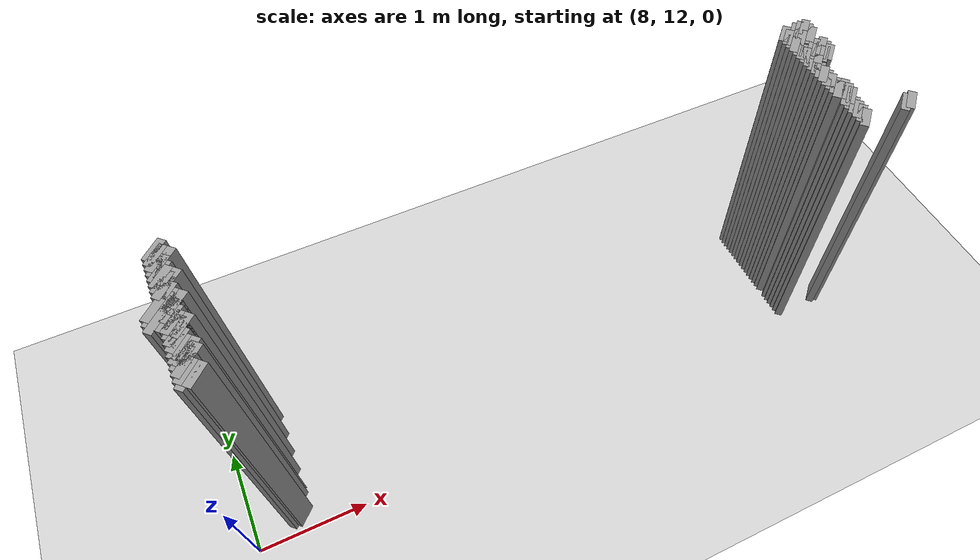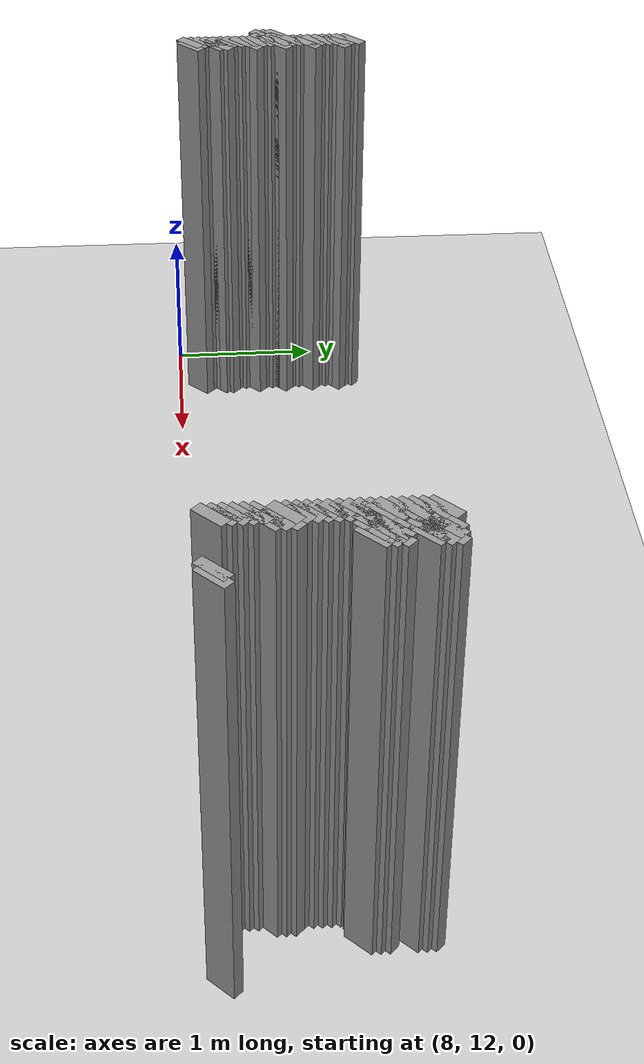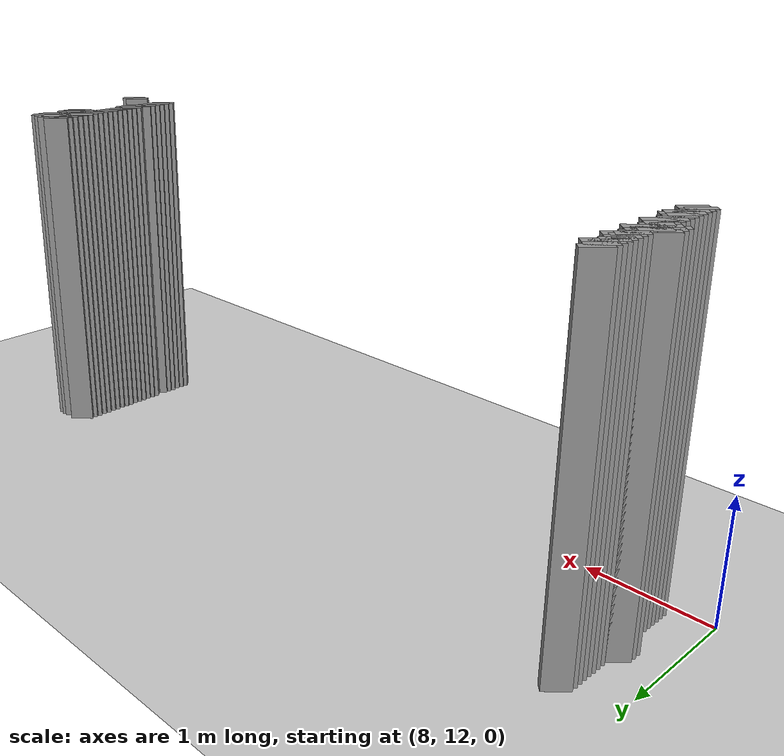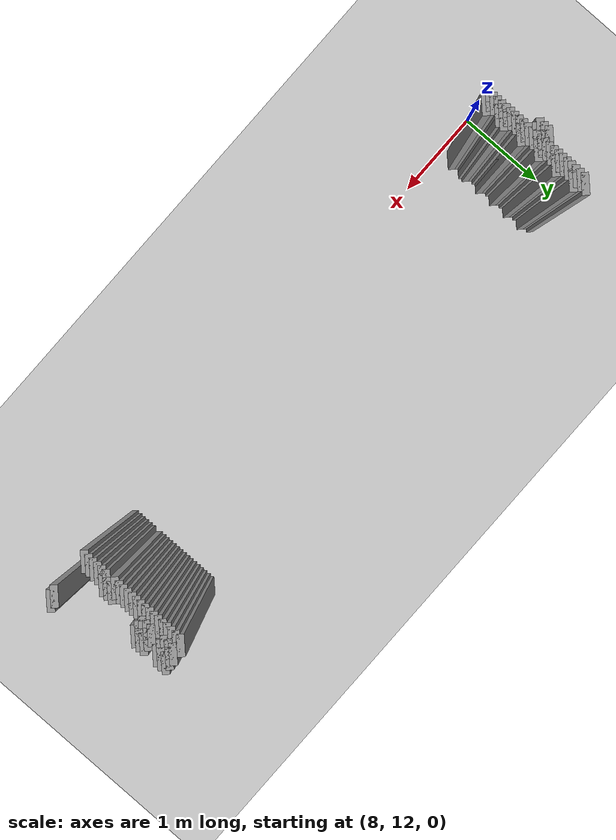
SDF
<sdf version="1.5">
 <world name="default">
  <include><uri>model://ground_plane</uri></include>
  <include><uri>model://sun</uri></include>
  <model name="grey_wall_779">
   <static>1</static>
   <link name="link">
    <pose>8.4 13.25  1.4 0 0 -0.785398163397</pose>
    <collision name="collision"><geometry><box><size>0.0707106781187 .2  2.8</size></box></geometry></collision>
    <visual name="visual">
     <cast_shadows>0</cast_shadows>
     <geometry><box><size>0.0707106781187 .2  2.8</size></box></geometry>
     <material>
      <script>
       <uri>model://grey_wall/materials/scripts</uri>
       <uri>model://grey_wall/materials/textures</uri>
       <name>vrc/grey_wall</name>
      </script>
     </material>
    </visual>
   </link>
  </model>
  <model name="grey_wall_780">
   <static>1</static>
   <link name="link">
    <pose>13.7 13.25  1.4 0 0 -0.785398163397</pose>
    <collision name="collision"><geometry><box><size>0.0707106781187 .2  2.8</size></box></geometry></collision>
    <visual name="visual">
     <cast_shadows>0</cast_shadows>
     <geometry><box><size>0.0707106781187 .2  2.8</size></box></geometry>
     <material>
      <script>
       <uri>model://grey_wall/materials/scripts</uri>
       <uri>model://grey_wall/materials/textures</uri>
       <name>vrc/grey_wall</name>
      </script>
     </material>
    </visual>
   </link>
  </model>
  <model name="grey_wall_781">
   <static>1</static>
   <link name="link">
    <pose>13.8 13.25  1.4 0 0 -0.785398163397</pose>
    <collision name="collision"><geometry><box><size>0.0707106781187 .2  2.8</size></box></geometry></collision>
    <visual name="visual">
     <cast_shadows>0</cast_shadows>
     <geometry><box><size>0.0707106781187 .2  2.8</size></box></geometry>
     <material>
      <script>
       <uri>model://grey_wall/materials/scripts</uri>
       <uri>model://grey_wall/materials/textures</uri>
       <name>vrc/grey_wall</name>
      </script>
     </material>
    </visual>
   </link>
  </model>
  <model name="grey_wall_782">
   <static>1</static>
   <link name="link">
    <pose>13.85 13.25  1.4 0 0 -0.785398163397</pose>
    <collision name="collision"><geometry><box><size>0.0707106781187 .2  2.8</size></box></geometry></collision>
    <visual name="visual">
     <cast_shadows>0</cast_shadows>
     <geometry><box><size>0.0707106781187 .2  2.8</size></box></geometry>
     <material>
      <script>
       <uri>model://grey_wall/materials/scripts</uri>
       <uri>model://grey_wall/materials/textures</uri>
       <name>vrc/grey_wall</name>
      </script>
     </material>
    </visual>
   </link>
  </model>
  <model name="grey_wall_783">
   <static>1</static>
   <link name="link">
    <pose>13.9 13.25  1.4 0 0 -0.785398163397</pose>
    <collision name="collision"><geometry><box><size>0.0707106781187 .2  2.8</size></box></geometry></collision>
    <visual name="visual">
     <cast_shadows>0</cast_shadows>
     <geometry><box><size>0.0707106781187 .2  2.8</size></box></geometry>
     <material>
      <script>
       <uri>model://grey_wall/materials/scripts</uri>
       <uri>model://grey_wall/materials/textures</uri>
       <name>vrc/grey_wall</name>
      </script>
     </material>
    </visual>
   </link>
  </model>
  <model name="grey_wall_784">
   <static>1</static>
   <link name="link">
    <pose>8.4 13.2  1.4 0 0 -0.785398163397</pose>
    <collision name="collision"><geometry><box><size>0.0707106781187 .2  2.8</size></box></geometry></collision>
    <visual name="visual">
     <cast_shadows>0</cast_shadows>
     <geometry><box><size>0.0707106781187 .2  2.8</size></box></geometry>
     <material>
      <script>
       <uri>model://grey_wall/materials/scripts</uri>
       <uri>model://grey_wall/materials/textures</uri>
       <name>vrc/grey_wall</name>
      </script>
     </material>
    </visual>
   </link>
  </model>
  <model name="grey_wall_785">
   <static>1</static>
   <link name="link">
    <pose>13.7 13.2  1.4 0 0 -0.785398163397</pose>
    <collision name="collision"><geometry><box><size>0.0707106781187 .2  2.8</size></box></geometry></collision>
    <visual name="visual">
     <cast_shadows>0</cast_shadows>
     <geometry><box><size>0.0707106781187 .2  2.8</size></box></geometry>
     <material>
      <script>
       <uri>model://grey_wall/materials/scripts</uri>
       <uri>model://grey_wall/materials/textures</uri>
       <name>vrc/grey_wall</name>
      </script>
     </material>
    </visual>
   </link>
  </model>
  <model name="grey_wall_786">
   <static>1</static>
   <link name="link">
    <pose>13.8 13.2  1.4 0 0 -0.785398163397</pose>
    <collision name="collision"><geometry><box><size>0.0707106781187 .2  2.8</size></box></geometry></collision>
    <visual name="visual">
     <cast_shadows>0</cast_shadows>
     <geometry><box><size>0.0707106781187 .2  2.8</size></box></geometry>
     <material>
      <script>
       <uri>model://grey_wall/materials/scripts</uri>
       <uri>model://grey_wall/materials/textures</uri>
       <name>vrc/grey_wall</name>
      </script>
     </material>
    </visual>
   </link>
  </model>
  <model name="grey_wall_787">
   <static>1</static>
   <link name="link">
    <pose>13.9 13.2  1.4 0 0 -0.785398163397</pose>
    <collision name="collision"><geometry><box><size>0.0707106781187 .2  2.8</size></box></geometry></collision>
    <visual name="visual">
     <cast_shadows>0</cast_shadows>
     <geometry><box><size>0.0707106781187 .2  2.8</size></box></geometry>
     <material>
      <script>
       <uri>model://grey_wall/materials/scripts</uri>
       <uri>model://grey_wall/materials/textures</uri>
       <name>vrc/grey_wall</name>
      </script>
     </material>
    </visual>
   </link>
  </model>
  <model name="grey_wall_788">
   <static>1</static>
   <link name="link">
    <pose>8.4 13.15  1.4 0 0 -0.785398163397</pose>
    <collision name="collision"><geometry><box><size>0.0707106781187 .2  2.8</size></box></geometry></collision>
    <visual name="visual">
     <cast_shadows>0</cast_shadows>
     <geometry><box><size>0.0707106781187 .2  2.8</size></box></geometry>
     <material>
      <script>
       <uri>model://grey_wall/materials/scripts</uri>
       <uri>model://grey_wall/materials/textures</uri>
       <name>vrc/grey_wall</name>
      </script>
     </material>
    </visual>
   </link>
  </model>
  <model name="grey_wall_789">
   <static>1</static>
   <link name="link">
    <pose>8.45 13.15  1.4 0 0 -0.785398163397</pose>
    <collision name="collision"><geometry><box><size>0.0707106781187 .2  2.8</size></box></geometry></collision>
    <visual name="visual">
     <cast_shadows>0</cast_shadows>
     <geometry><box><size>0.0707106781187 .2  2.8</size></box></geometry>
     <material>
      <script>
       <uri>model://grey_wall/materials/scripts</uri>
       <uri>model://grey_wall/materials/textures</uri>
       <name>vrc/grey_wall</name>
      </script>
     </material>
    </visual>
   </link>
  </model>
  <model name="grey_wall_790">
   <static>1</static>
   <link name="link">
    <pose>13.7 13.15  1.4 0 0 -0.785398163397</pose>
    <collision name="collision"><geometry><box><size>0.0707106781187 .2  2.8</size></box></geometry></collision>
    <visual name="visual">
     <cast_shadows>0</cast_shadows>
     <geometry><box><size>0.0707106781187 .2  2.8</size></box></geometry>
     <material>
      <script>
       <uri>model://grey_wall/materials/scripts</uri>
       <uri>model://grey_wall/materials/textures</uri>
       <name>vrc/grey_wall</name>
      </script>
     </material>
    </visual>
   </link>
  </model>
  <model name="grey_wall_791">
   <static>1</static>
   <link name="link">
    <pose>13.8 13.15  1.4 0 0 -0.785398163397</pose>
    <collision name="collision"><geometry><box><size>0.0707106781187 .2  2.8</size></box></geometry></collision>
    <visual name="visual">
     <cast_shadows>0</cast_shadows>
     <geometry><box><size>0.0707106781187 .2  2.8</size></box></geometry>
     <material>
      <script>
       <uri>model://grey_wall/materials/scripts</uri>
       <uri>model://grey_wall/materials/textures</uri>
       <name>vrc/grey_wall</name>
      </script>
     </material>
    </visual>
   </link>
  </model>
  <model name="grey_wall_792">
   <static>1</static>
   <link name="link">
    <pose>13.85 13.15  1.4 0 0 -0.785398163397</pose>
    <collision name="collision"><geometry><box><size>0.0707106781187 .2  2.8</size></box></geometry></collision>
    <visual name="visual">
     <cast_shadows>0</cast_shadows>
     <geometry><box><size>0.0707106781187 .2  2.8</size></box></geometry>
     <material>
      <script>
       <uri>model://grey_wall/materials/scripts</uri>
       <uri>model://grey_wall/materials/textures</uri>
       <name>vrc/grey_wall</name>
      </script>
     </material>
    </visual>
   </link>
  </model>
  <model name="grey_wall_793">
   <static>1</static>
   <link name="link">
    <pose>13.9 13.15  1.4 0 0 -0.785398163397</pose>
    <collision name="collision"><geometry><box><size>0.0707106781187 .2  2.8</size></box></geometry></collision>
    <visual name="visual">
     <cast_shadows>0</cast_shadows>
     <geometry><box><size>0.0707106781187 .2  2.8</size></box></geometry>
     <material>
      <script>
       <uri>model://grey_wall/materials/scripts</uri>
       <uri>model://grey_wall/materials/textures</uri>
       <name>vrc/grey_wall</name>
      </script>
     </material>
    </visual>
   </link>
  </model>
  <model name="grey_wall_794">
   <static>1</static>
   <link name="link">
    <pose>8.4 13.1  1.4 0 0 -0.785398163397</pose>
    <collision name="collision"><geometry><box><size>0.0707106781187 .2  2.8</size></box></geometry></collision>
    <visual name="visual">
     <cast_shadows>0</cast_shadows>
     <geometry><box><size>0.0707106781187 .2  2.8</size></box></geometry>
     <material>
      <script>
       <uri>model://grey_wall/materials/scripts</uri>
       <uri>model://grey_wall/materials/textures</uri>
       <name>vrc/grey_wall</name>
      </script>
     </material>
    </visual>
   </link>
  </model>
  <model name="grey_wall_795">
   <static>1</static>
   <link name="link">
    <pose>13.7 13.1  1.4 0 0 -0.785398163397</pose>
    <collision name="collision"><geometry><box><size>0.0707106781187 .2  2.8</size></box></geometry></collision>
    <visual name="visual">
     <cast_shadows>0</cast_shadows>
     <geometry><box><size>0.0707106781187 .2  2.8</size></box></geometry>
     <material>
      <script>
       <uri>model://grey_wall/materials/scripts</uri>
       <uri>model://grey_wall/materials/textures</uri>
       <name>vrc/grey_wall</name>
      </script>
     </material>
    </visual>
   </link>
  </model>
  <model name="grey_wall_796">
   <static>1</static>
   <link name="link">
    <pose>8.4 13.05  1.4 0 0 -0.785398163397</pose>
    <collision name="collision"><geometry><box><size>0.0707106781187 .2  2.8</size></box></geometry></collision>
    <visual name="visual">
     <cast_shadows>0</cast_shadows>
     <geometry><box><size>0.0707106781187 .2  2.8</size></box></geometry>
     <material>
      <script>
       <uri>model://grey_wall/materials/scripts</uri>
       <uri>model://grey_wall/materials/textures</uri>
       <name>vrc/grey_wall</name>
      </script>
     </material>
    </visual>
   </link>
  </model>
  <model name="grey_wall_797">
   <static>1</static>
   <link name="link">
    <pose>13.7 13.05  1.4 0 0 -0.785398163397</pose>
    <collision name="collision"><geometry><box><size>0.0707106781187 .2  2.8</size></box></geometry></collision>
    <visual name="visual">
     <cast_shadows>0</cast_shadows>
     <geometry><box><size>0.0707106781187 .2  2.8</size></box></geometry>
     <material>
      <script>
       <uri>model://grey_wall/materials/scripts</uri>
       <uri>model://grey_wall/materials/textures</uri>
       <name>vrc/grey_wall</name>
      </script>
     </material>
    </visual>
   </link>
  </model>
  <model name="grey_wall_798">
   <static>1</static>
   <link name="link">
    <pose>8.4 13.0  1.4 0 0 -0.785398163397</pose>
    <collision name="collision"><geometry><box><size>0.0707106781187 .2  2.8</size></box></geometry></collision>
    <visual name="visual">
     <cast_shadows>0</cast_shadows>
     <geometry><box><size>0.0707106781187 .2  2.8</size></box></geometry>
     <material>
      <script>
       <uri>model://grey_wall/materials/scripts</uri>
       <uri>model://grey_wall/materials/textures</uri>
       <name>vrc/grey_wall</name>
      </script>
     </material>
    </visual>
   </link>
  </model>
  <model name="grey_wall_799">
   <static>1</static>
   <link name="link">
    <pose>13.7 13.0  1.4 0 0 -0.785398163397</pose>
    <collision name="collision"><geometry><box><size>0.0707106781187 .2  2.8</size></box></geometry></collision>
    <visual name="visual">
     <cast_shadows>0</cast_shadows>
     <geometry><box><size>0.0707106781187 .2  2.8</size></box></geometry>
     <material>
      <script>
       <uri>model://grey_wall/materials/scripts</uri>
       <uri>model://grey_wall/materials/textures</uri>
       <name>vrc/grey_wall</name>
      </script>
     </material>
    </visual>
   </link>
  </model>
  <model name="grey_wall_800">
   <static>1</static>
   <link name="link">
    <pose>13.8 13.0  1.4 0 0 -0.785398163397</pose>
    <collision name="collision"><geometry><box><size>0.0707106781187 .2  2.8</size></box></geometry></collision>
    <visual name="visual">
     <cast_shadows>0</cast_shadows>
     <geometry><box><size>0.0707106781187 .2  2.8</size></box></geometry>
     <material>
      <script>
       <uri>model://grey_wall/materials/scripts</uri>
       <uri>model://grey_wall/materials/textures</uri>
       <name>vrc/grey_wall</name>
      </script>
     </material>
    </visual>
   </link>
  </model>
  <model name="grey_wall_801">
   <static>1</static>
   <link name="link">
    <pose>13.85 13.0  1.4 0 0 -0.785398163397</pose>
    <collision name="collision"><geometry><box><size>0.0707106781187 .2  2.8</size></box></geometry></collision>
    <visual name="visual">
     <cast_shadows>0</cast_shadows>
     <geometry><box><size>0.0707106781187 .2  2.8</size></box></geometry>
     <material>
      <script>
       <uri>model://grey_wall/materials/scripts</uri>
       <uri>model://grey_wall/materials/textures</uri>
       <name>vrc/grey_wall</name>
      </script>
     </material>
    </visual>
   </link>
  </model>
  <model name="grey_wall_802">
   <static>1</static>
   <link name="link">
    <pose>13.9 13.0  1.4 0 0 -0.785398163397</pose>
    <collision name="collision"><geometry><box><size>0.0707106781187 .2  2.8</size></box></geometry></collision>
    <visual name="visual">
     <cast_shadows>0</cast_shadows>
     <geometry><box><size>0.0707106781187 .2  2.8</size></box></geometry>
     <material>
      <script>
       <uri>model://grey_wall/materials/scripts</uri>
       <uri>model://grey_wall/materials/textures</uri>
       <name>vrc/grey_wall</name>
      </script>
     </material>
    </visual>
   </link>
  </model>
  <model name="grey_wall_803">
   <static>1</static>
   <link name="link">
    <pose>8.4 12.95  1.4 0 0 -0.785398163397</pose>
    <collision name="collision"><geometry><box><size>0.0707106781187 .2  2.8</size></box></geometry></collision>
    <visual name="visual">
     <cast_shadows>0</cast_shadows>
     <geometry><box><size>0.0707106781187 .2  2.8</size></box></geometry>
     <material>
      <script>
       <uri>model://grey_wall/materials/scripts</uri>
       <uri>model://grey_wall/materials/textures</uri>
       <name>vrc/grey_wall</name>
      </script>
     </material>
    </visual>
   </link>
  </model>
  <model name="grey_wall_804">
   <static>1</static>
   <link name="link">
    <pose>8.45 12.95  1.4 0 0 -0.785398163397</pose>
    <collision name="collision"><geometry><box><size>0.0707106781187 .2  2.8</size></box></geometry></collision>
    <visual name="visual">
     <cast_shadows>0</cast_shadows>
     <geometry><box><size>0.0707106781187 .2  2.8</size></box></geometry>
     <material>
      <script>
       <uri>model://grey_wall/materials/scripts</uri>
       <uri>model://grey_wall/materials/textures</uri>
       <name>vrc/grey_wall</name>
      </script>
     </material>
    </visual>
   </link>
  </model>
  <model name="grey_wall_805">
   <static>1</static>
   <link name="link">
    <pose>13.7 12.95  1.4 0 0 -0.785398163397</pose>
    <collision name="collision"><geometry><box><size>0.0707106781187 .2  2.8</size></box></geometry></collision>
    <visual name="visual">
     <cast_shadows>0</cast_shadows>
     <geometry><box><size>0.0707106781187 .2  2.8</size></box></geometry>
     <material>
      <script>
       <uri>model://grey_wall/materials/scripts</uri>
       <uri>model://grey_wall/materials/textures</uri>
       <name>vrc/grey_wall</name>
      </script>
     </material>
    </visual>
   </link>
  </model>
  <model name="grey_wall_806">
   <static>1</static>
   <link name="link">
    <pose>13.8 12.95  1.4 0 0 -0.785398163397</pose>
    <collision name="collision"><geometry><box><size>0.0707106781187 .2  2.8</size></box></geometry></collision>
    <visual name="visual">
     <cast_shadows>0</cast_shadows>
     <geometry><box><size>0.0707106781187 .2  2.8</size></box></geometry>
     <material>
      <script>
       <uri>model://grey_wall/materials/scripts</uri>
       <uri>model://grey_wall/materials/textures</uri>
       <name>vrc/grey_wall</name>
      </script>
     </material>
    </visual>
   </link>
  </model>
  <model name="grey_wall_807">
   <static>1</static>
   <link name="link">
    <pose>13.9 12.95  1.4 0 0 -0.785398163397</pose>
    <collision name="collision"><geometry><box><size>0.0707106781187 .2  2.8</size></box></geometry></collision>
    <visual name="visual">
     <cast_shadows>0</cast_shadows>
     <geometry><box><size>0.0707106781187 .2  2.8</size></box></geometry>
     <material>
      <script>
       <uri>model://grey_wall/materials/scripts</uri>
       <uri>model://grey_wall/materials/textures</uri>
       <name>vrc/grey_wall</name>
      </script>
     </material>
    </visual>
   </link>
  </model>
  <model name="grey_wall_808">
   <static>1</static>
   <link name="link">
    <pose>8.4 12.9  1.4 0 0 -0.785398163397</pose>
    <collision name="collision"><geometry><box><size>0.0707106781187 .2  2.8</size></box></geometry></collision>
    <visual name="visual">
     <cast_shadows>0</cast_shadows>
     <geometry><box><size>0.0707106781187 .2  2.8</size></box></geometry>
     <material>
      <script>
       <uri>model://grey_wall/materials/scripts</uri>
       <uri>model://grey_wall/materials/textures</uri>
       <name>vrc/grey_wall</name>
      </script>
     </material>
    </visual>
   </link>
  </model>
  <model name="grey_wall_809">
   <static>1</static>
   <link name="link">
    <pose>13.7 12.9  1.4 0 0 -0.785398163397</pose>
    <collision name="collision"><geometry><box><size>0.0707106781187 .2  2.8</size></box></geometry></collision>
    <visual name="visual">
     <cast_shadows>0</cast_shadows>
     <geometry><box><size>0.0707106781187 .2  2.8</size></box></geometry>
     <material>
      <script>
       <uri>model://grey_wall/materials/scripts</uri>
       <uri>model://grey_wall/materials/textures</uri>
       <name>vrc/grey_wall</name>
      </script>
     </material>
    </visual>
   </link>
  </model>
  <model name="grey_wall_810">
   <static>1</static>
   <link name="link">
    <pose>13.8 12.9  1.4 0 0 -0.785398163397</pose>
    <collision name="collision"><geometry><box><size>0.0707106781187 .2  2.8</size></box></geometry></collision>
    <visual name="visual">
     <cast_shadows>0</cast_shadows>
     <geometry><box><size>0.0707106781187 .2  2.8</size></box></geometry>
     <material>
      <script>
       <uri>model://grey_wall/materials/scripts</uri>
       <uri>model://grey_wall/materials/textures</uri>
       <name>vrc/grey_wall</name>
      </script>
     </material>
    </visual>
   </link>
  </model>
  <model name="grey_wall_811">
   <static>1</static>
   <link name="link">
    <pose>13.85 12.9  1.4 0 0 -0.785398163397</pose>
    <collision name="collision"><geometry><box><size>0.0707106781187 .2  2.8</size></box></geometry></collision>
    <visual name="visual">
     <cast_shadows>0</cast_shadows>
     <geometry><box><size>0.0707106781187 .2  2.8</size></box></geometry>
     <material>
      <script>
       <uri>model://grey_wall/materials/scripts</uri>
       <uri>model://grey_wall/materials/textures</uri>
       <name>vrc/grey_wall</name>
      </script>
     </material>
    </visual>
   </link>
  </model>
  <model name="grey_wall_812">
   <static>1</static>
   <link name="link">
    <pose>13.9 12.9  1.4 0 0 -0.785398163397</pose>
    <collision name="collision"><geometry><box><size>0.0707106781187 .2  2.8</size></box></geometry></collision>
    <visual name="visual">
     <cast_shadows>0</cast_shadows>
     <geometry><box><size>0.0707106781187 .2  2.8</size></box></geometry>
     <material>
      <script>
       <uri>model://grey_wall/materials/scripts</uri>
       <uri>model://grey_wall/materials/textures</uri>
       <name>vrc/grey_wall</name>
      </script>
     </material>
    </visual>
   </link>
  </model>
  <model name="grey_wall_813">
   <static>1</static>
   <link name="link">
    <pose>8.4 12.85  1.4 0 0 -0.785398163397</pose>
    <collision name="collision"><geometry><box><size>0.0707106781187 .2  2.8</size></box></geometry></collision>
    <visual name="visual">
     <cast_shadows>0</cast_shadows>
     <geometry><box><size>0.0707106781187 .2  2.8</size></box></geometry>
     <material>
      <script>
       <uri>model://grey_wall/materials/scripts</uri>
       <uri>model://grey_wall/materials/textures</uri>
       <name>vrc/grey_wall</name>
      </script>
     </material>
    </visual>
   </link>
  </model>
  <model name="grey_wall_814">
   <static>1</static>
   <link name="link">
    <pose>13.7 12.85  1.4 0 0 -0.785398163397</pose>
    <collision name="collision"><geometry><box><size>0.0707106781187 .2  2.8</size></box></geometry></collision>
    <visual name="visual">
     <cast_shadows>0</cast_shadows>
     <geometry><box><size>0.0707106781187 .2  2.8</size></box></geometry>
     <material>
      <script>
       <uri>model://grey_wall/materials/scripts</uri>
       <uri>model://grey_wall/materials/textures</uri>
       <name>vrc/grey_wall</name>
      </script>
     </material>
    </visual>
   </link>
  </model>
  <model name="grey_wall_815">
   <static>1</static>
   <link name="link">
    <pose>8.4 12.8  1.4 0 0 -0.785398163397</pose>
    <collision name="collision"><geometry><box><size>0.0707106781187 .2  2.8</size></box></geometry></collision>
    <visual name="visual">
     <cast_shadows>0</cast_shadows>
     <geometry><box><size>0.0707106781187 .2  2.8</size></box></geometry>
     <material>
      <script>
       <uri>model://grey_wall/materials/scripts</uri>
       <uri>model://grey_wall/materials/textures</uri>
       <name>vrc/grey_wall</name>
      </script>
     </material>
    </visual>
   </link>
  </model>
  <model name="grey_wall_816">
   <static>1</static>
   <link name="link">
    <pose>13.7 12.8  1.4 0 0 -0.785398163397</pose>
    <collision name="collision"><geometry><box><size>0.0707106781187 .2  2.8</size></box></geometry></collision>
    <visual name="visual">
     <cast_shadows>0</cast_shadows>
     <geometry><box><size>0.0707106781187 .2  2.8</size></box></geometry>
     <material>
      <script>
       <uri>model://grey_wall/materials/scripts</uri>
       <uri>model://grey_wall/materials/textures</uri>
       <name>vrc/grey_wall</name>
      </script>
     </material>
    </visual>
   </link>
  </model>
  <model name="grey_wall_817">
   <static>1</static>
   <link name="link">
    <pose>8.3 12.75  1.4 0 0 -0.785398163397</pose>
    <collision name="collision"><geometry><box><size>0.0707106781187 .2  2.8</size></box></geometry></collision>
    <visual name="visual">
     <cast_shadows>0</cast_shadows>
     <geometry><box><size>0.0707106781187 .2  2.8</size></box></geometry>
     <material>
      <script>
       <uri>model://grey_wall/materials/scripts</uri>
       <uri>model://grey_wall/materials/textures</uri>
       <name>vrc/grey_wall</name>
      </script>
     </material>
    </visual>
   </link>
  </model>
  <model name="grey_wall_818">
   <static>1</static>
   <link name="link">
    <pose>8.35 12.75  1.4 0 0 -0.785398163397</pose>
    <collision name="collision"><geometry><box><size>0.0707106781187 .2  2.8</size></box></geometry></collision>
    <visual name="visual">
     <cast_shadows>0</cast_shadows>
     <geometry><box><size>0.0707106781187 .2  2.8</size></box></geometry>
     <material>
      <script>
       <uri>model://grey_wall/materials/scripts</uri>
       <uri>model://grey_wall/materials/textures</uri>
       <name>vrc/grey_wall</name>
      </script>
     </material>
    </visual>
   </link>
  </model>
  <model name="grey_wall_819">
   <static>1</static>
   <link name="link">
    <pose>8.4 12.75  1.4 0 0 -0.785398163397</pose>
    <collision name="collision"><geometry><box><size>0.0707106781187 .2  2.8</size></box></geometry></collision>
    <visual name="visual">
     <cast_shadows>0</cast_shadows>
     <geometry><box><size>0.0707106781187 .2  2.8</size></box></geometry>
     <material>
      <script>
       <uri>model://grey_wall/materials/scripts</uri>
       <uri>model://grey_wall/materials/textures</uri>
       <name>vrc/grey_wall</name>
      </script>
     </material>
    </visual>
   </link>
  </model>
  <model name="grey_wall_820">
   <static>1</static>
   <link name="link">
    <pose>8.45 12.75  1.4 0 0 -0.785398163397</pose>
    <collision name="collision"><geometry><box><size>0.0707106781187 .2  2.8</size></box></geometry></collision>
    <visual name="visual">
     <cast_shadows>0</cast_shadows>
     <geometry><box><size>0.0707106781187 .2  2.8</size></box></geometry>
     <material>
      <script>
       <uri>model://grey_wall/materials/scripts</uri>
       <uri>model://grey_wall/materials/textures</uri>
       <name>vrc/grey_wall</name>
      </script>
     </material>
    </visual>
   </link>
  </model>
  <model name="grey_wall_821">
   <static>1</static>
   <link name="link">
    <pose>13.7 12.75  1.4 0 0 -0.785398163397</pose>
    <collision name="collision"><geometry><box><size>0.0707106781187 .2  2.8</size></box></geometry></collision>
    <visual name="visual">
     <cast_shadows>0</cast_shadows>
     <geometry><box><size>0.0707106781187 .2  2.8</size></box></geometry>
     <material>
      <script>
       <uri>model://grey_wall/materials/scripts</uri>
       <uri>model://grey_wall/materials/textures</uri>
       <name>vrc/grey_wall</name>
      </script>
     </material>
    </visual>
   </link>
  </model>
  <model name="grey_wall_822">
   <static>1</static>
   <link name="link">
    <pose>8.3 12.7  1.4 0 0 -0.785398163397</pose>
    <collision name="collision"><geometry><box><size>0.0707106781187 .2  2.8</size></box></geometry></collision>
    <visual name="visual">
     <cast_shadows>0</cast_shadows>
     <geometry><box><size>0.0707106781187 .2  2.8</size></box></geometry>
     <material>
      <script>
       <uri>model://grey_wall/materials/scripts</uri>
       <uri>model://grey_wall/materials/textures</uri>
       <name>vrc/grey_wall</name>
      </script>
     </material>
    </visual>
   </link>
  </model>
  <model name="grey_wall_823">
   <static>1</static>
   <link name="link">
    <pose>8.4 12.7  1.4 0 0 -0.785398163397</pose>
    <collision name="collision"><geometry><box><size>0.0707106781187 .2  2.8</size></box></geometry></collision>
    <visual name="visual">
     <cast_shadows>0</cast_shadows>
     <geometry><box><size>0.0707106781187 .2  2.8</size></box></geometry>
     <material>
      <script>
       <uri>model://grey_wall/materials/scripts</uri>
       <uri>model://grey_wall/materials/textures</uri>
       <name>vrc/grey_wall</name>
      </script>
     </material>
    </visual>
   </link>
  </model>
  <model name="grey_wall_824">
   <static>1</static>
   <link name="link">
    <pose>13.7 12.7  1.4 0 0 -0.785398163397</pose>
    <collision name="collision"><geometry><box><size>0.0707106781187 .2  2.8</size></box></geometry></collision>
    <visual name="visual">
     <cast_shadows>0</cast_shadows>
     <geometry><box><size>0.0707106781187 .2  2.8</size></box></geometry>
     <material>
      <script>
       <uri>model://grey_wall/materials/scripts</uri>
       <uri>model://grey_wall/materials/textures</uri>
       <name>vrc/grey_wall</name>
      </script>
     </material>
    </visual>
   </link>
  </model>
  <model name="grey_wall_825">
   <static>1</static>
   <link name="link">
    <pose>8.3 12.65  1.4 0 0 -0.785398163397</pose>
    <collision name="collision"><geometry><box><size>0.0707106781187 .2  2.8</size></box></geometry></collision>
    <visual name="visual">
     <cast_shadows>0</cast_shadows>
     <geometry><box><size>0.0707106781187 .2  2.8</size></box></geometry>
     <material>
      <script>
       <uri>model://grey_wall/materials/scripts</uri>
       <uri>model://grey_wall/materials/textures</uri>
       <name>vrc/grey_wall</name>
      </script>
     </material>
    </visual>
   </link>
  </model>
  <model name="grey_wall_826">
   <static>1</static>
   <link name="link">
    <pose>8.35 12.65  1.4 0 0 -0.785398163397</pose>
    <collision name="collision"><geometry><box><size>0.0707106781187 .2  2.8</size></box></geometry></collision>
    <visual name="visual">
     <cast_shadows>0</cast_shadows>
     <geometry><box><size>0.0707106781187 .2  2.8</size></box></geometry>
     <material>
      <script>
       <uri>model://grey_wall/materials/scripts</uri>
       <uri>model://grey_wall/materials/textures</uri>
       <name>vrc/grey_wall</name>
      </script>
     </material>
    </visual>
   </link>
  </model>
  <model name="grey_wall_827">
   <static>1</static>
   <link name="link">
    <pose>8.4 12.65  1.4 0 0 -0.785398163397</pose>
    <collision name="collision"><geometry><box><size>0.0707106781187 .2  2.8</size></box></geometry></collision>
    <visual name="visual">
     <cast_shadows>0</cast_shadows>
     <geometry><box><size>0.0707106781187 .2  2.8</size></box></geometry>
     <material>
      <script>
       <uri>model://grey_wall/materials/scripts</uri>
       <uri>model://grey_wall/materials/textures</uri>
       <name>vrc/grey_wall</name>
      </script>
     </material>
    </visual>
   </link>
  </model>
  <model name="grey_wall_828">
   <static>1</static>
   <link name="link">
    <pose>13.7 12.65  1.4 0 0 -0.785398163397</pose>
    <collision name="collision"><geometry><box><size>0.0707106781187 .2  2.8</size></box></geometry></collision>
    <visual name="visual">
     <cast_shadows>0</cast_shadows>
     <geometry><box><size>0.0707106781187 .2  2.8</size></box></geometry>
     <material>
      <script>
       <uri>model://grey_wall/materials/scripts</uri>
       <uri>model://grey_wall/materials/textures</uri>
       <name>vrc/grey_wall</name>
      </script>
     </material>
    </visual>
   </link>
  </model>
  <model name="grey_wall_829">
   <static>1</static>
   <link name="link">
    <pose>8.4 12.6  1.4 0 0 -0.785398163397</pose>
    <collision name="collision"><geometry><box><size>0.0707106781187 .2  2.8</size></box></geometry></collision>
    <visual name="visual">
     <cast_shadows>0</cast_shadows>
     <geometry><box><size>0.0707106781187 .2  2.8</size></box></geometry>
     <material>
      <script>
       <uri>model://grey_wall/materials/scripts</uri>
       <uri>model://grey_wall/materials/textures</uri>
       <name>vrc/grey_wall</name>
      </script>
     </material>
    </visual>
   </link>
  </model>
  <model name="grey_wall_830">
   <static>1</static>
   <link name="link">
    <pose>13.7 12.6  1.4 0 0 -0.785398163397</pose>
    <collision name="collision"><geometry><box><size>0.0707106781187 .2  2.8</size></box></geometry></collision>
    <visual name="visual">
     <cast_shadows>0</cast_shadows>
     <geometry><box><size>0.0707106781187 .2  2.8</size></box></geometry>
     <material>
      <script>
       <uri>model://grey_wall/materials/scripts</uri>
       <uri>model://grey_wall/materials/textures</uri>
       <name>vrc/grey_wall</name>
      </script>
     </material>
    </visual>
   </link>
  </model>
  <model name="grey_wall_831">
   <static>1</static>
   <link name="link">
    <pose>8.4 12.55  1.4 0 0 -0.785398163397</pose>
    <collision name="collision"><geometry><box><size>0.0707106781187 .2  2.8</size></box></geometry></collision>
    <visual name="visual">
     <cast_shadows>0</cast_shadows>
     <geometry><box><size>0.0707106781187 .2  2.8</size></box></geometry>
     <material>
      <script>
       <uri>model://grey_wall/materials/scripts</uri>
       <uri>model://grey_wall/materials/textures</uri>
       <name>vrc/grey_wall</name>
      </script>
     </material>
    </visual>
   </link>
  </model>
  <model name="grey_wall_832">
   <static>1</static>
   <link name="link">
    <pose>8.45 12.55  1.4 0 0 -0.785398163397</pose>
    <collision name="collision"><geometry><box><size>0.0707106781187 .2  2.8</size></box></geometry></collision>
    <visual name="visual">
     <cast_shadows>0</cast_shadows>
     <geometry><box><size>0.0707106781187 .2  2.8</size></box></geometry>
     <material>
      <script>
       <uri>model://grey_wall/materials/scripts</uri>
       <uri>model://grey_wall/materials/textures</uri>
       <name>vrc/grey_wall</name>
      </script>
     </material>
    </visual>
   </link>
  </model>
  <model name="grey_wall_833">
   <static>1</static>
   <link name="link">
    <pose>13.7 12.55  1.4 0 0 -0.785398163397</pose>
    <collision name="collision"><geometry><box><size>0.0707106781187 .2  2.8</size></box></geometry></collision>
    <visual name="visual">
     <cast_shadows>0</cast_shadows>
     <geometry><box><size>0.0707106781187 .2  2.8</size></box></geometry>
     <material>
      <script>
       <uri>model://grey_wall/materials/scripts</uri>
       <uri>model://grey_wall/materials/textures</uri>
       <name>vrc/grey_wall</name>
      </script>
     </material>
    </visual>
   </link>
  </model>
  <model name="grey_wall_834">
   <static>1</static>
   <link name="link">
    <pose>8.4 12.5  1.4 0 0 -0.785398163397</pose>
    <collision name="collision"><geometry><box><size>0.0707106781187 .2  2.8</size></box></geometry></collision>
    <visual name="visual">
     <cast_shadows>0</cast_shadows>
     <geometry><box><size>0.0707106781187 .2  2.8</size></box></geometry>
     <material>
      <script>
       <uri>model://grey_wall/materials/scripts</uri>
       <uri>model://grey_wall/materials/textures</uri>
       <name>vrc/grey_wall</name>
      </script>
     </material>
    </visual>
   </link>
  </model>
  <model name="grey_wall_835">
   <static>1</static>
   <link name="link">
    <pose>13.7 12.5  1.4 0 0 -0.785398163397</pose>
    <collision name="collision"><geometry><box><size>0.0707106781187 .2  2.8</size></box></geometry></collision>
    <visual name="visual">
     <cast_shadows>0</cast_shadows>
     <geometry><box><size>0.0707106781187 .2  2.8</size></box></geometry>
     <material>
      <script>
       <uri>model://grey_wall/materials/scripts</uri>
       <uri>model://grey_wall/materials/textures</uri>
       <name>vrc/grey_wall</name>
      </script>
     </material>
    </visual>
   </link>
  </model>
  <model name="grey_wall_836">
   <static>1</static>
   <link name="link">
    <pose>13.75 12.5  1.4 0 0 -0.785398163397</pose>
    <collision name="collision"><geometry><box><size>0.0707106781187 .2  2.8</size></box></geometry></collision>
    <visual name="visual">
     <cast_shadows>0</cast_shadows>
     <geometry><box><size>0.0707106781187 .2  2.8</size></box></geometry>
     <material>
      <script>
       <uri>model://grey_wall/materials/scripts</uri>
       <uri>model://grey_wall/materials/textures</uri>
       <name>vrc/grey_wall</name>
      </script>
     </material>
    </visual>
   </link>
  </model>
  <model name="grey_wall_837">
   <static>1</static>
   <link name="link">
    <pose>8.4 12.45  1.4 0 0 -0.785398163397</pose>
    <collision name="collision"><geometry><box><size>0.0707106781187 .2  2.8</size></box></geometry></collision>
    <visual name="visual">
     <cast_shadows>0</cast_shadows>
     <geometry><box><size>0.0707106781187 .2  2.8</size></box></geometry>
     <material>
      <script>
       <uri>model://grey_wall/materials/scripts</uri>
       <uri>model://grey_wall/materials/textures</uri>
       <name>vrc/grey_wall</name>
      </script>
     </material>
    </visual>
   </link>
  </model>
  <model name="grey_wall_838">
   <static>1</static>
   <link name="link">
    <pose>13.75 12.45  1.4 0 0 -0.785398163397</pose>
    <collision name="collision"><geometry><box><size>0.0707106781187 .2  2.8</size></box></geometry></collision>
    <visual name="visual">
     <cast_shadows>0</cast_shadows>
     <geometry><box><size>0.0707106781187 .2  2.8</size></box></geometry>
     <material>
      <script>
       <uri>model://grey_wall/materials/scripts</uri>
       <uri>model://grey_wall/materials/textures</uri>
       <name>vrc/grey_wall</name>
      </script>
     </material>
    </visual>
   </link>
  </model>
  <model name="grey_wall_839">
   <static>1</static>
   <link name="link">
    <pose>8.4 12.4  1.4 0 0 -0.785398163397</pose>
    <collision name="collision"><geometry><box><size>0.0707106781187 .2  2.8</size></box></geometry></collision>
    <visual name="visual">
     <cast_shadows>0</cast_shadows>
     <geometry><box><size>0.0707106781187 .2  2.8</size></box></geometry>
     <material>
      <script>
       <uri>model://grey_wall/materials/scripts</uri>
       <uri>model://grey_wall/materials/textures</uri>
       <name>vrc/grey_wall</name>
      </script>
     </material>
    </visual>
   </link>
  </model>
  <model name="grey_wall_840">
   <static>1</static>
   <link name="link">
    <pose>13.7 12.4  1.4 0 0 -0.785398163397</pose>
    <collision name="collision"><geometry><box><size>0.0707106781187 .2  2.8</size></box></geometry></collision>
    <visual name="visual">
     <cast_shadows>0</cast_shadows>
     <geometry><box><size>0.0707106781187 .2  2.8</size></box></geometry>
     <material>
      <script>
       <uri>model://grey_wall/materials/scripts</uri>
       <uri>model://grey_wall/materials/textures</uri>
       <name>vrc/grey_wall</name>
      </script>
     </material>
    </visual>
   </link>
  </model>
  <model name="grey_wall_841">
   <static>1</static>
   <link name="link">
    <pose>13.75 12.4  1.4 0 0 -0.785398163397</pose>
    <collision name="collision"><geometry><box><size>0.0707106781187 .2  2.8</size></box></geometry></collision>
    <visual name="visual">
     <cast_shadows>0</cast_shadows>
     <geometry><box><size>0.0707106781187 .2  2.8</size></box></geometry>
     <material>
      <script>
       <uri>model://grey_wall/materials/scripts</uri>
       <uri>model://grey_wall/materials/textures</uri>
       <name>vrc/grey_wall</name>
      </script>
     </material>
    </visual>
   </link>
  </model>
  <model name="grey_wall_842">
   <static>1</static>
   <link name="link">
    <pose>8.4 12.35  1.4 0 0 -0.785398163397</pose>
    <collision name="collision"><geometry><box><size>0.0707106781187 .2  2.8</size></box></geometry></collision>
    <visual name="visual">
     <cast_shadows>0</cast_shadows>
     <geometry><box><size>0.0707106781187 .2  2.8</size></box></geometry>
     <material>
      <script>
       <uri>model://grey_wall/materials/scripts</uri>
       <uri>model://grey_wall/materials/textures</uri>
       <name>vrc/grey_wall</name>
      </script>
     </material>
    </visual>
   </link>
  </model>
  <model name="grey_wall_843">
   <static>1</static>
   <link name="link">
    <pose>8.45 12.35  1.4 0 0 -0.785398163397</pose>
    <collision name="collision"><geometry><box><size>0.0707106781187 .2  2.8</size></box></geometry></collision>
    <visual name="visual">
     <cast_shadows>0</cast_shadows>
     <geometry><box><size>0.0707106781187 .2  2.8</size></box></geometry>
     <material>
      <script>
       <uri>model://grey_wall/materials/scripts</uri>
       <uri>model://grey_wall/materials/textures</uri>
       <name>vrc/grey_wall</name>
      </script>
     </material>
    </visual>
   </link>
  </model>
  <model name="grey_wall_844">
   <static>1</static>
   <link name="link">
    <pose>13.7 12.35  1.4 0 0 -0.785398163397</pose>
    <collision name="collision"><geometry><box><size>0.0707106781187 .2  2.8</size></box></geometry></collision>
    <visual name="visual">
     <cast_shadows>0</cast_shadows>
     <geometry><box><size>0.0707106781187 .2  2.8</size></box></geometry>
     <material>
      <script>
       <uri>model://grey_wall/materials/scripts</uri>
       <uri>model://grey_wall/materials/textures</uri>
       <name>vrc/grey_wall</name>
      </script>
     </material>
    </visual>
   </link>
  </model>
  <model name="grey_wall_845">
   <static>1</static>
   <link name="link">
    <pose>8.4 12.3  1.4 0 0 -0.785398163397</pose>
    <collision name="collision"><geometry><box><size>0.0707106781187 .2  2.8</size></box></geometry></collision>
    <visual name="visual">
     <cast_shadows>0</cast_shadows>
     <geometry><box><size>0.0707106781187 .2  2.8</size></box></geometry>
     <material>
      <script>
       <uri>model://grey_wall/materials/scripts</uri>
       <uri>model://grey_wall/materials/textures</uri>
       <name>vrc/grey_wall</name>
      </script>
     </material>
    </visual>
   </link>
  </model>
  <model name="grey_wall_846">
   <static>1</static>
   <link name="link">
    <pose>8.45 12.3  1.4 0 0 -0.785398163397</pose>
    <collision name="collision"><geometry><box><size>0.0707106781187 .2  2.8</size></box></geometry></collision>
    <visual name="visual">
     <cast_shadows>0</cast_shadows>
     <geometry><box><size>0.0707106781187 .2  2.8</size></box></geometry>
     <material>
      <script>
       <uri>model://grey_wall/materials/scripts</uri>
       <uri>model://grey_wall/materials/textures</uri>
       <name>vrc/grey_wall</name>
      </script>
     </material>
    </visual>
   </link>
  </model>
  <model name="grey_wall_847">
   <static>1</static>
   <link name="link">
    <pose>13.7 12.3  1.4 0 0 -0.785398163397</pose>
    <collision name="collision"><geometry><box><size>0.0707106781187 .2  2.8</size></box></geometry></collision>
    <visual name="visual">
     <cast_shadows>0</cast_shadows>
     <geometry><box><size>0.0707106781187 .2  2.8</size></box></geometry>
     <material>
      <script>
       <uri>model://grey_wall/materials/scripts</uri>
       <uri>model://grey_wall/materials/textures</uri>
       <name>vrc/grey_wall</name>
      </script>
     </material>
    </visual>
   </link>
  </model>
  <model name="grey_wall_848">
   <static>1</static>
   <link name="link">
    <pose>8.4 12.25  1.4 0 0 -0.785398163397</pose>
    <collision name="collision"><geometry><box><size>0.0707106781187 .2  2.8</size></box></geometry></collision>
    <visual name="visual">
     <cast_shadows>0</cast_shadows>
     <geometry><box><size>0.0707106781187 .2  2.8</size></box></geometry>
     <material>
      <script>
       <uri>model://grey_wall/materials/scripts</uri>
       <uri>model://grey_wall/materials/textures</uri>
       <name>vrc/grey_wall</name>
      </script>
     </material>
    </visual>
   </link>
  </model>
  <model name="grey_wall_849">
   <static>1</static>
   <link name="link">
    <pose>13.7 12.25  1.4 0 0 -0.785398163397</pose>
    <collision name="collision"><geometry><box><size>0.0707106781187 .2  2.8</size></box></geometry></collision>
    <visual name="visual">
     <cast_shadows>0</cast_shadows>
     <geometry><box><size>0.0707106781187 .2  2.8</size></box></geometry>
     <material>
      <script>
       <uri>model://grey_wall/materials/scripts</uri>
       <uri>model://grey_wall/materials/textures</uri>
       <name>vrc/grey_wall</name>
      </script>
     </material>
    </visual>
   </link>
  </model>
  <model name="grey_wall_850">
   <static>1</static>
   <link name="link">
    <pose>8.4 12.2  1.4 0 0 -0.785398163397</pose>
    <collision name="collision"><geometry><box><size>0.0707106781187 .2  2.8</size></box></geometry></collision>
    <visual name="visual">
     <cast_shadows>0</cast_shadows>
     <geometry><box><size>0.0707106781187 .2  2.8</size></box></geometry>
     <material>
      <script>
       <uri>model://grey_wall/materials/scripts</uri>
       <uri>model://grey_wall/materials/textures</uri>
       <name>vrc/grey_wall</name>
      </script>
     </material>
    </visual>
   </link>
  </model>
  <model name="grey_wall_851">
   <static>1</static>
   <link name="link">
    <pose>13.7 12.2  1.4 0 0 -0.785398163397</pose>
    <collision name="collision"><geometry><box><size>0.0707106781187 .2  2.8</size></box></geometry></collision>
    <visual name="visual">
     <cast_shadows>0</cast_shadows>
     <geometry><box><size>0.0707106781187 .2  2.8</size></box></geometry>
     <material>
      <script>
       <uri>model://grey_wall/materials/scripts</uri>
       <uri>model://grey_wall/materials/textures</uri>
       <name>vrc/grey_wall</name>
      </script>
     </material>
    </visual>
   </link>
  </model>
  <model name="grey_wall_852">
   <static>1</static>
   <link name="link">
    <pose>8.4 12.15  1.4 0 0 -0.785398163397</pose>
    <collision name="collision"><geometry><box><size>0.0707106781187 .2  2.8</size></box></geometry></collision>
    <visual name="visual">
     <cast_shadows>0</cast_shadows>
     <geometry><box><size>0.0707106781187 .2  2.8</size></box></geometry>
     <material>
      <script>
       <uri>model://grey_wall/materials/scripts</uri>
       <uri>model://grey_wall/materials/textures</uri>
       <name>vrc/grey_wall</name>
      </script>
     </material>
    </visual>
   </link>
  </model>
  <model name="grey_wall_853">
   <static>1</static>
   <link name="link">
    <pose>8.45 12.15  1.4 0 0 -0.785398163397</pose>
    <collision name="collision"><geometry><box><size>0.0707106781187 .2  2.8</size></box></geometry></collision>
    <visual name="visual">
     <cast_shadows>0</cast_shadows>
     <geometry><box><size>0.0707106781187 .2  2.8</size></box></geometry>
     <material>
      <script>
       <uri>model://grey_wall/materials/scripts</uri>
       <uri>model://grey_wall/materials/textures</uri>
       <name>vrc/grey_wall</name>
      </script>
     </material>
    </visual>
   </link>
  </model>
  <model name="grey_wall_854">
   <static>1</static>
   <link name="link">
    <pose>13.7 12.15  1.4 0 0 -0.785398163397</pose>
    <collision name="collision"><geometry><box><size>0.0707106781187 .2  2.8</size></box></geometry></collision>
    <visual name="visual">
     <cast_shadows>0</cast_shadows>
     <geometry><box><size>0.0707106781187 .2  2.8</size></box></geometry>
     <material>
      <script>
       <uri>model://grey_wall/materials/scripts</uri>
       <uri>model://grey_wall/materials/textures</uri>
       <name>vrc/grey_wall</name>
      </script>
     </material>
    </visual>
   </link>
  </model>
  <model name="grey_wall_855">
   <static>1</static>
   <link name="link">
    <pose>14.1 12.15  1.4 0 0 -0.785398163397</pose>
    <collision name="collision"><geometry><box><size>0.0707106781187 .2  2.8</size></box></geometry></collision>
    <visual name="visual">
     <cast_shadows>0</cast_shadows>
     <geometry><box><size>0.0707106781187 .2  2.8</size></box></geometry>
     <material>
      <script>
       <uri>model://grey_wall/materials/scripts</uri>
       <uri>model://grey_wall/materials/textures</uri>
       <name>vrc/grey_wall</name>
      </script>
     </material>
    </visual>
   </link>
  </model>
  <model name="grey_wall_856">
   <static>1</static>
   <link name="link">
    <pose>14.15 12.15  1.4 0 0 -0.785398163397</pose>
    <collision name="collision"><geometry><box><size>0.0707106781187 .2  2.8</size></box></geometry></collision>
    <visual name="visual">
     <cast_shadows>0</cast_shadows>
     <geometry><box><size>0.0707106781187 .2  2.8</size></box></geometry>
     <material>
      <script>
       <uri>model://grey_wall/materials/scripts</uri>
       <uri>model://grey_wall/materials/textures</uri>
       <name>vrc/grey_wall</name>
      </script>
     </material>
    </visual>
   </link>
  </model>
 </world>
</sdf>
